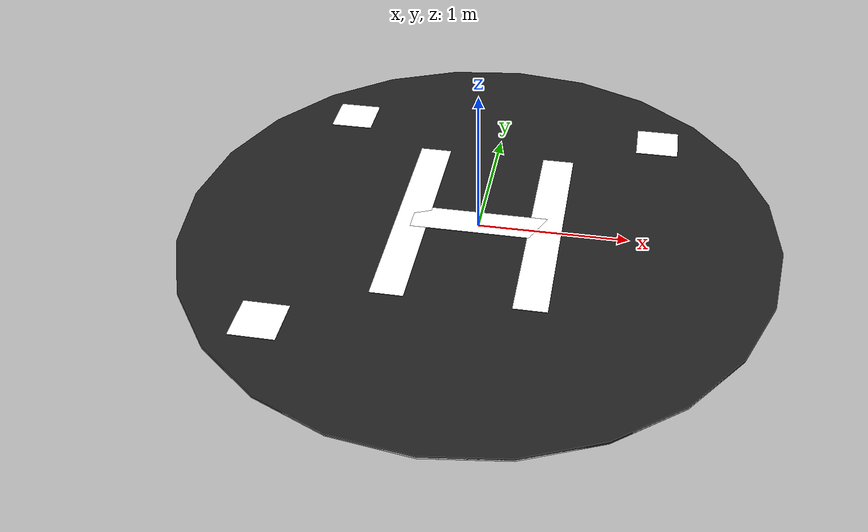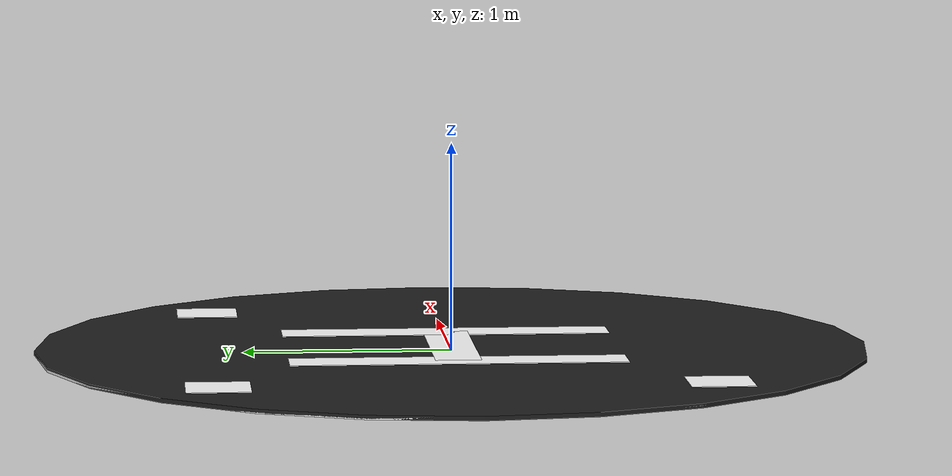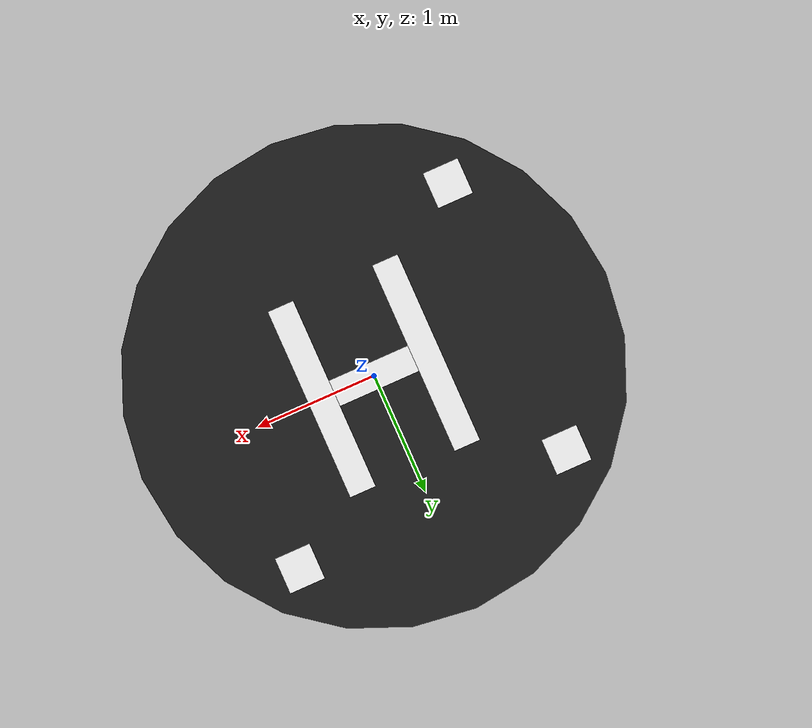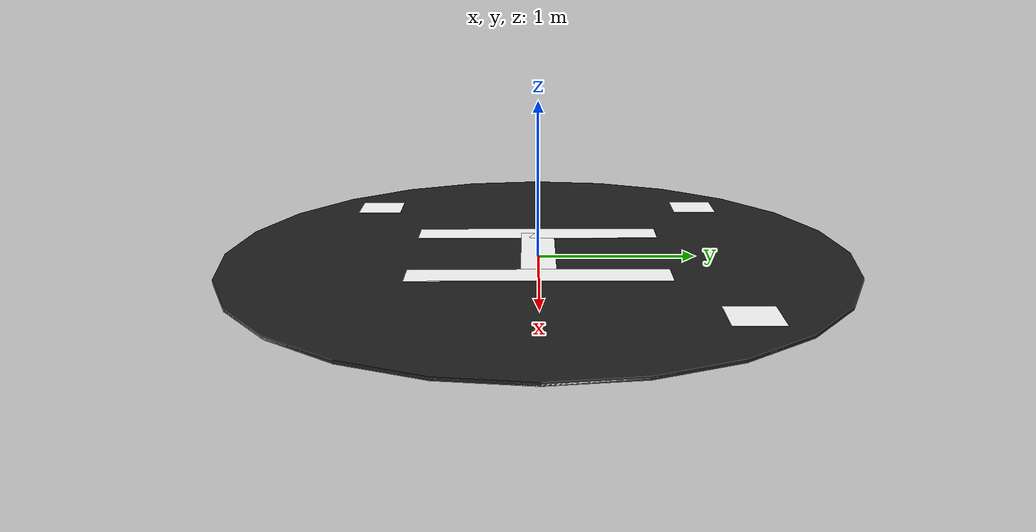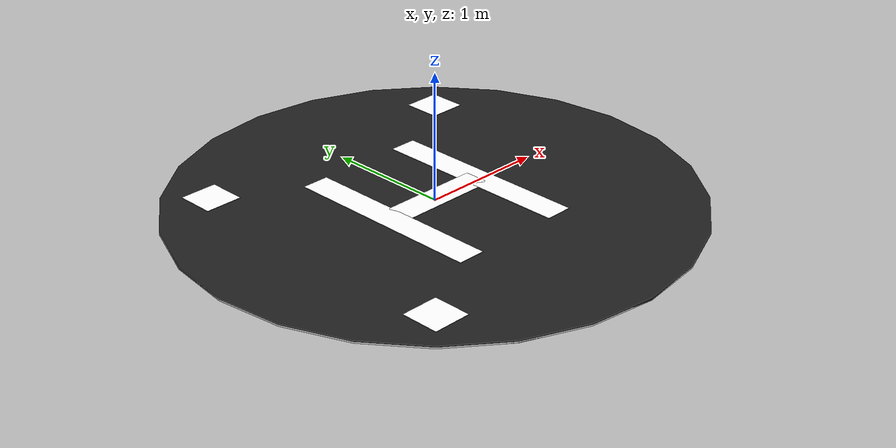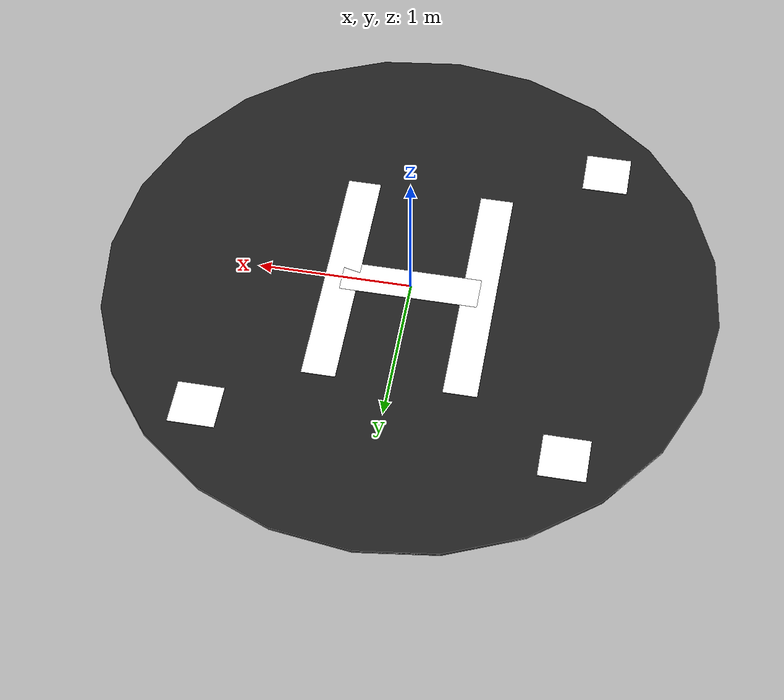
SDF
<?xml version="1.0" ?>
<sdf version="1.9">
  <model name="landing_pad">
    <static>true</static>

    <link name="pad">
      <collision name="collision">
        <pose>0 0 0.01 0 0 0</pose>
        <geometry>
          <cylinder>
            <radius>2.0</radius>
            <length>0.02</length>
          </cylinder>
        </geometry>
        <surface>
          <friction>
            <ode>
              <mu>1.2</mu>
              <mu2>1.2</mu2>
            </ode>
          </friction>
          <contact>
            <ode>
              <kp>1e6</kp>
              <kd>100</kd>
            </ode>
          </contact>
        </surface>
      </collision>

      <visual name="deck">
        <pose>0 0 0.01 0 0 0</pose>
        <geometry>
          <cylinder>
            <radius>2.0</radius>
            <length>0.02</length>
          </cylinder>
        </geometry>
        <material>
          <ambient>0.08 0.08 0.08 1</ambient>
          <diffuse>0.12 0.12 0.12 1</diffuse>
          <specular>0.02 0.02 0.02 1</specular>
        </material>
      </visual>

      <!-- White ring, drawn as a slightly larger, slightly lower disc so it
           reads as an outline from above without needing a texture. -->
      <visual name="ring">
        <pose>0 0 0.005 0 0 0</pose>
        <geometry>
          <cylinder>
            <radius>2.0</radius>
            <length>0.012</length>
          </cylinder>
        </geometry>
        <material>
          <ambient>0.85 0.85 0.85 1</ambient>
          <diffuse>0.95 0.95 0.95 1</diffuse>
          <emissive>0.25 0.25 0.25 1</emissive>
        </material>
      </visual>

      <!-- H marking: two uprights and a crossbar. -->
      <visual name="h_left">
        <pose>-0.45 0 0.022 0 0 0</pose>
        <geometry><box><size>0.22 1.60 0.004</size></box></geometry>
        <material>
          <ambient>0.9 0.9 0.9 1</ambient>
          <diffuse>1.0 1.0 1.0 1</diffuse>
          <emissive>0.35 0.35 0.35 1</emissive>
        </material>
      </visual>
      <visual name="h_right">
        <pose>0.45 0 0.022 0 0 0</pose>
        <geometry><box><size>0.22 1.60 0.004</size></box></geometry>
        <material>
          <ambient>0.9 0.9 0.9 1</ambient>
          <diffuse>1.0 1.0 1.0 1</diffuse>
          <emissive>0.35 0.35 0.35 1</emissive>
        </material>
      </visual>
      <visual name="h_bar">
        <pose>0 0 0.022 0 0 0</pose>
        <geometry><box><size>0.90 0.22 0.004</size></box></geometry>
        <material>
          <ambient>0.9 0.9 0.9 1</ambient>
          <diffuse>1.0 1.0 1.0 1</diffuse>
          <emissive>0.35 0.35 0.35 1</emissive>
        </material>
      </visual>

      <visual name="fiducial_ne">
        <pose>1.15 1.15 0.022 0 0 0</pose>
        <geometry><box><size>0.30 0.30 0.004</size></box></geometry>
        <material>
          <ambient>0.9 0.9 0.9 1</ambient>
          <diffuse>1.0 1.0 1.0 1</diffuse>
          <emissive>0.35 0.35 0.35 1</emissive>
        </material>
      </visual>
      <visual name="fiducial_nw">
        <pose>-1.15 1.15 0.022 0 0 0</pose>
        <geometry><box><size>0.30 0.30 0.004</size></box></geometry>
        <material>
          <ambient>0.9 0.9 0.9 1</ambient>
          <diffuse>1.0 1.0 1.0 1</diffuse>
          <emissive>0.35 0.35 0.35 1</emissive>
        </material>
      </visual>
      <visual name="fiducial_sw">
        <pose>-1.15 -1.15 0.022 0 0 0</pose>
        <geometry><box><size>0.30 0.30 0.004</size></box></geometry>
        <material>
          <ambient>0.9 0.9 0.9 1</ambient>
          <diffuse>1.0 1.0 1.0 1</diffuse>
          <emissive>0.35 0.35 0.35 1</emissive>
        </material>
      </visual>
      <!-- The south-east corner is deliberately left empty. Three fiducials in
           an L give a unique orientation; four identical ones do not. -->
    </link>
  </model>
</sdf>
